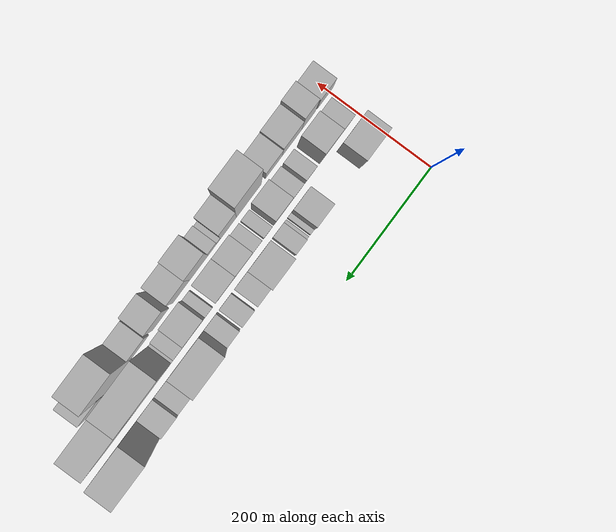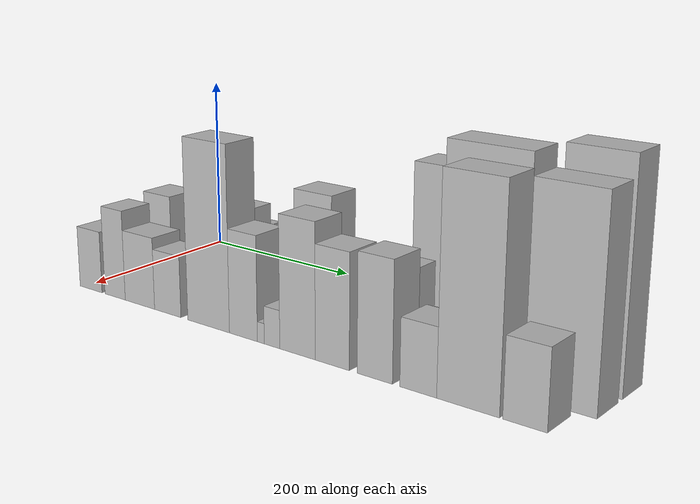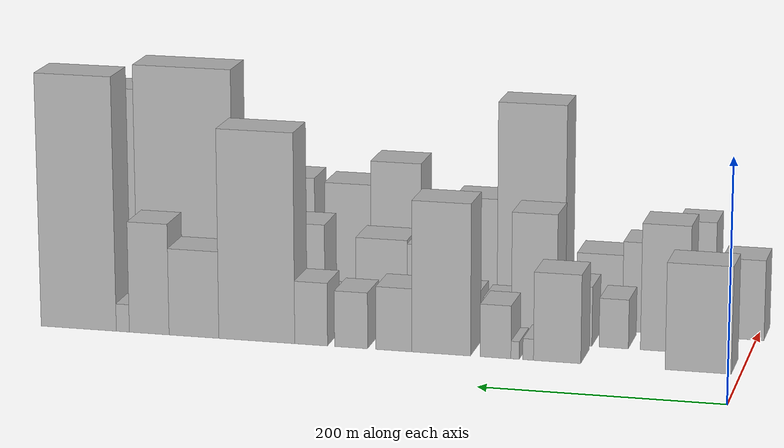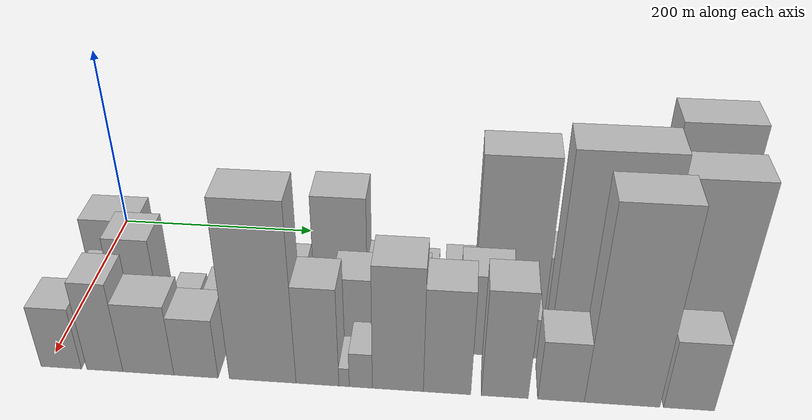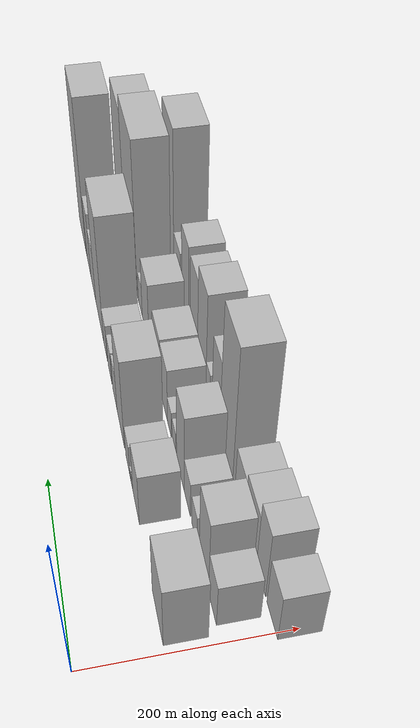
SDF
<sdf version="1.6">
 <world name="default">
  <model name="building_17">
   <static>1</static>
   <pose>100.0000 34.7056 0 0.000000 0.000000 0.000000</pose>
   <link name="link">
    <pose>0 0 45.00 0 0 0</pose>
    <collision name="collision"><geometry><box><size>40.0000 53.9557 90.0000</size></box></geometry></collision>
    <visual name="visual">
     <cast_shadows>0</cast_shadows>
     <geometry><box><size>40.0000 53.9557 90.0000</size></box></geometry>
     <material>
      <script>
       <uri>model://HANNAS_wall/materials/scripts</uri>
       <uri>model://HANNAS_wall/materials/textures</uri>
       <name>vrc/HANNAS_wall</name>
      </script>
     </material>
    </visual>
   </link>
  </model>
  <model name="building_18">
   <static>1</static>
   <pose>100.0000 150.6203 0 0.000000 0.000000 0.000000</pose>
   <link name="link">
    <pose>0 0 37.50 0 0 0</pose>
    <collision name="collision"><geometry><box><size>40.0000 39.2913 75.0000</size></box></geometry></collision>
    <visual name="visual">
     <cast_shadows>0</cast_shadows>
     <geometry><box><size>40.0000 39.2913 75.0000</size></box></geometry>
     <material>
      <script>
       <uri>model://HANNAS_wall/materials/scripts</uri>
       <uri>model://HANNAS_wall/materials/textures</uri>
       <name>vrc/HANNAS_wall</name>
      </script>
     </material>
    </visual>
   </link>
  </model>
  <model name="building_19">
   <static>1</static>
   <pose>100.0000 174.6894 0 0.000000 0.000000 0.000000</pose>
   <link name="link">
    <pose>0 0 9.00 0 0 0</pose>
    <collision name="collision"><geometry><box><size>40.0000 8.8470 18.0000</size></box></geometry></collision>
    <visual name="visual">
     <cast_shadows>0</cast_shadows>
     <geometry><box><size>40.0000 8.8470 18.0000</size></box></geometry>
     <material>
      <script>
       <uri>model://HANNAS_wall/materials/scripts</uri>
       <uri>model://HANNAS_wall/materials/textures</uri>
       <name>vrc/HANNAS_wall</name>
      </script>
     </material>
    </visual>
   </link>
  </model>
  <model name="building_20">
   <static>1</static>
   <pose>100.0000 185.5754 0 0.000000 0.000000 0.000000</pose>
   <link name="link">
    <pose>0 0 7.50 0 0 0</pose>
    <collision name="collision"><geometry><box><size>40.0000 6.9249 15.0000</size></box></geometry></collision>
    <visual name="visual">
     <cast_shadows>0</cast_shadows>
     <geometry><box><size>40.0000 6.9249 15.0000</size></box></geometry>
     <material>
      <script>
       <uri>model://HANNAS_wall/materials/scripts</uri>
       <uri>model://HANNAS_wall/materials/textures</uri>
       <name>vrc/HANNAS_wall</name>
      </script>
     </material>
    </visual>
   </link>
  </model>
  <model name="building_21">
   <static>1</static>
   <pose>100.0000 201.9347 0 0.000000 0.000000 0.000000</pose>
   <link name="link">
    <pose>0 0 22.50 0 0 0</pose>
    <collision name="collision"><geometry><box><size>40.0000 25.7938 45.0000</size></box></geometry></collision>
    <visual name="visual">
     <cast_shadows>0</cast_shadows>
     <geometry><box><size>40.0000 25.7938 45.0000</size></box></geometry>
     <material>
      <script>
       <uri>model://HANNAS_wall/materials/scripts</uri>
       <uri>model://HANNAS_wall/materials/textures</uri>
       <name>vrc/HANNAS_wall</name>
      </script>
     </material>
    </visual>
   </link>
  </model>
  <model name="building_22">
   <static>1</static>
   <pose>100.0000 247.6585 0 0.000000 0.000000 0.000000</pose>
   <link name="link">
    <pose>0 0 64.50 0 0 0</pose>
    <collision name="collision"><geometry><box><size>40.0000 49.6538 129.0000</size></box></geometry></collision>
    <visual name="visual">
     <cast_shadows>0</cast_shadows>
     <geometry><box><size>40.0000 49.6538 129.0000</size></box></geometry>
     <material>
      <script>
       <uri>model://HANNAS_wall/materials/scripts</uri>
       <uri>model://HANNAS_wall/materials/textures</uri>
       <name>vrc/HANNAS_wall</name>
      </script>
     </material>
    </visual>
   </link>
  </model>
  <model name="building_23">
   <static>1</static>
   <pose>100.0000 287.6734 0 0.000000 0.000000 0.000000</pose>
   <link name="link">
    <pose>0 0 27.00 0 0 0</pose>
    <collision name="collision"><geometry><box><size>40.0000 30.3761 54.0000</size></box></geometry></collision>
    <visual name="visual">
     <cast_shadows>0</cast_shadows>
     <geometry><box><size>40.0000 30.3761 54.0000</size></box></geometry>
     <material>
      <script>
       <uri>model://HANNAS_wall/materials/scripts</uri>
       <uri>model://HANNAS_wall/materials/textures</uri>
       <name>vrc/HANNAS_wall</name>
      </script>
     </material>
    </visual>
   </link>
  </model>
  <model name="building_24">
   <static>1</static>
   <pose>100.0000 323.9697 0 0.000000 0.000000 0.000000</pose>
   <link name="link">
    <pose>0 0 24.00 0 0 0</pose>
    <collision name="collision"><geometry><box><size>40.0000 28.2166 48.0000</size></box></geometry></collision>
    <visual name="visual">
     <cast_shadows>0</cast_shadows>
     <geometry><box><size>40.0000 28.2166 48.0000</size></box></geometry>
     <material>
      <script>
       <uri>model://HANNAS_wall/materials/scripts</uri>
       <uri>model://HANNAS_wall/materials/textures</uri>
       <name>vrc/HANNAS_wall</name>
      </script>
     </material>
    </visual>
   </link>
  </model>
  <model name="building_25">
   <static>1</static>
   <pose>100.0000 358.1570 0 0.000000 0.000000 0.000000</pose>
   <link name="link">
    <pose>0 0 27.00 0 0 0</pose>
    <collision name="collision"><geometry><box><size>40.0000 28.1580 54.0000</size></box></geometry></collision>
    <visual name="visual">
     <cast_shadows>0</cast_shadows>
     <geometry><box><size>40.0000 28.1580 54.0000</size></box></geometry>
     <material>
      <script>
       <uri>model://HANNAS_wall/materials/scripts</uri>
       <uri>model://HANNAS_wall/materials/textures</uri>
       <name>vrc/HANNAS_wall</name>
      </script>
     </material>
    </visual>
   </link>
  </model>
  <model name="building_26">
   <static>1</static>
   <pose>100.0000 405.0540 0 0.000000 0.000000 0.000000</pose>
   <link name="link">
    <pose>0 0 90.00 0 0 0</pose>
    <collision name="collision"><geometry><box><size>40.0000 65.6360 180.0000</size></box></geometry></collision>
    <visual name="visual">
     <cast_shadows>0</cast_shadows>
     <geometry><box><size>40.0000 65.6360 180.0000</size></box></geometry>
     <material>
      <script>
       <uri>model://HANNAS_wall/materials/scripts</uri>
       <uri>model://HANNAS_wall/materials/textures</uri>
       <name>vrc/HANNAS_wall</name>
      </script>
     </material>
    </visual>
   </link>
  </model>
  <model name="building_27">
   <static>1</static>
   <pose>100.0000 459.5757 0 0.000000 0.000000 0.000000</pose>
   <link name="link">
    <pose>0 0 37.50 0 0 0</pose>
    <collision name="collision"><geometry><box><size>40.0000 43.4074 75.0000</size></box></geometry></collision>
    <visual name="visual">
     <cast_shadows>0</cast_shadows>
     <geometry><box><size>40.0000 43.4074 75.0000</size></box></geometry>
     <material>
      <script>
       <uri>model://HANNAS_wall/materials/scripts</uri>
       <uri>model://HANNAS_wall/materials/textures</uri>
       <name>vrc/HANNAS_wall</name>
      </script>
     </material>
    </visual>
   </link>
  </model>
  <model name="building_28">
   <static>1</static>
   <pose>100.0000 498.7292 0 0.000000 0.000000 0.000000</pose>
   <link name="link">
    <pose>0 0 48.00 0 0 0</pose>
    <collision name="collision"><geometry><box><size>40.0000 34.8997 96.0000</size></box></geometry></collision>
    <visual name="visual">
     <cast_shadows>0</cast_shadows>
     <geometry><box><size>40.0000 34.8997 96.0000</size></box></geometry>
     <material>
      <script>
       <uri>model://HANNAS_wall/materials/scripts</uri>
       <uri>model://HANNAS_wall/materials/textures</uri>
       <name>vrc/HANNAS_wall</name>
      </script>
     </material>
    </visual>
   </link>
  </model>
  <model name="building_29">
   <static>1</static>
   <pose>100.0000 521.9105 0 0.000000 0.000000 0.000000</pose>
   <link name="link">
    <pose>0 0 12.00 0 0 0</pose>
    <collision name="collision"><geometry><box><size>40.0000 11.4629 24.0000</size></box></geometry></collision>
    <visual name="visual">
     <cast_shadows>0</cast_shadows>
     <geometry><box><size>40.0000 11.4629 24.0000</size></box></geometry>
     <material>
      <script>
       <uri>model://HANNAS_wall/materials/scripts</uri>
       <uri>model://HANNAS_wall/materials/textures</uri>
       <name>vrc/HANNAS_wall</name>
      </script>
     </material>
    </visual>
   </link>
  </model>
  <model name="building_30">
   <static>1</static>
   <pose>100.0000 560.9484 0 0.000000 0.000000 0.000000</pose>
   <link name="link">
    <pose>0 0 109.50 0 0 0</pose>
    <collision name="collision"><geometry><box><size>40.0000 66.6127 219.0000</size></box></geometry></collision>
    <visual name="visual">
     <cast_shadows>0</cast_shadows>
     <geometry><box><size>40.0000 66.6127 219.0000</size></box></geometry>
     <material>
      <script>
       <uri>model://HANNAS_wall/materials/scripts</uri>
       <uri>model://HANNAS_wall/materials/textures</uri>
       <name>vrc/HANNAS_wall</name>
      </script>
     </material>
    </visual>
   </link>
  </model>
  <model name="building_45">
   <static>1</static>
   <pose>149.0000 33.1688 0 0.000000 0.000000 0.000000</pose>
   <link name="link">
    <pose>0 0 31.50 0 0 0</pose>
    <collision name="collision"><geometry><box><size>40.0000 32.4219 63.0000</size></box></geometry></collision>
    <visual name="visual">
     <cast_shadows>0</cast_shadows>
     <geometry><box><size>40.0000 32.4219 63.0000</size></box></geometry>
     <material>
      <script>
       <uri>model://HANNAS_wall/materials/scripts</uri>
       <uri>model://HANNAS_wall/materials/textures</uri>
       <name>vrc/HANNAS_wall</name>
      </script>
     </material>
    </visual>
   </link>
  </model>
  <model name="building_46">
   <static>1</static>
   <pose>149.0000 69.6636 0 0.000000 0.000000 0.000000</pose>
   <link name="link">
    <pose>0 0 54.00 0 0 0</pose>
    <collision name="collision"><geometry><box><size>40.0000 40.5679 108.0000</size></box></geometry></collision>
    <visual name="visual">
     <cast_shadows>0</cast_shadows>
     <geometry><box><size>40.0000 40.5679 108.0000</size></box></geometry>
     <material>
      <script>
       <uri>model://HANNAS_wall/materials/scripts</uri>
       <uri>model://HANNAS_wall/materials/textures</uri>
       <name>vrc/HANNAS_wall</name>
      </script>
     </material>
    </visual>
   </link>
  </model>
  <model name="building_47">
   <static>1</static>
   <pose>149.0000 112.2504 0 0.000000 0.000000 0.000000</pose>
   <link name="link">
    <pose>0 0 21.00 0 0 0</pose>
    <collision name="collision"><geometry><box><size>40.0000 24.6057 42.0000</size></box></geometry></collision>
    <visual name="visual">
     <cast_shadows>0</cast_shadows>
     <geometry><box><size>40.0000 24.6057 42.0000</size></box></geometry>
     <material>
      <script>
       <uri>model://HANNAS_wall/materials/scripts</uri>
       <uri>model://HANNAS_wall/materials/textures</uri>
       <name>vrc/HANNAS_wall</name>
      </script>
     </material>
    </visual>
   </link>
  </model>
  <model name="building_48">
   <static>1</static>
   <pose>149.0000 145.4254 0 0.000000 0.000000 0.000000</pose>
   <link name="link">
    <pose>0 0 25.50 0 0 0</pose>
    <collision name="collision"><geometry><box><size>40.0000 29.7442 51.0000</size></box></geometry></collision>
    <visual name="visual">
     <cast_shadows>0</cast_shadows>
     <geometry><box><size>40.0000 29.7442 51.0000</size></box></geometry>
     <material>
      <script>
       <uri>model://HANNAS_wall/materials/scripts</uri>
       <uri>model://HANNAS_wall/materials/textures</uri>
       <name>vrc/HANNAS_wall</name>
      </script>
     </material>
    </visual>
   </link>
  </model>
  <model name="building_49">
   <static>1</static>
   <pose>149.0000 179.5197 0 0.000000 0.000000 0.000000</pose>
   <link name="link">
    <pose>0 0 55.50 0 0 0</pose>
    <collision name="collision"><geometry><box><size>40.0000 38.4443 111.0000</size></box></geometry></collision>
    <visual name="visual">
     <cast_shadows>0</cast_shadows>
     <geometry><box><size>40.0000 38.4443 111.0000</size></box></geometry>
     <material>
      <script>
       <uri>model://HANNAS_wall/materials/scripts</uri>
       <uri>model://HANNAS_wall/materials/textures</uri>
       <name>vrc/HANNAS_wall</name>
      </script>
     </material>
    </visual>
   </link>
  </model>
  <model name="building_50">
   <static>1</static>
   <pose>149.0000 212.6584 0 0.000000 0.000000 0.000000</pose>
   <link name="link">
    <pose>0 0 18.00 0 0 0</pose>
    <collision name="collision"><geometry><box><size>40.0000 19.8331 36.0000</size></box></geometry></collision>
    <visual name="visual">
     <cast_shadows>0</cast_shadows>
     <geometry><box><size>40.0000 19.8331 36.0000</size></box></geometry>
     <material>
      <script>
       <uri>model://HANNAS_wall/materials/scripts</uri>
       <uri>model://HANNAS_wall/materials/textures</uri>
       <name>vrc/HANNAS_wall</name>
      </script>
     </material>
    </visual>
   </link>
  </model>
  <model name="building_51">
   <static>1</static>
   <pose>149.0000 237.3529 0 0.000000 0.000000 0.000000</pose>
   <link name="link">
    <pose>0 0 19.50 0 0 0</pose>
    <collision name="collision"><geometry><box><size>40.0000 21.5558 39.0000</size></box></geometry></collision>
    <visual name="visual">
     <cast_shadows>0</cast_shadows>
     <geometry><box><size>40.0000 21.5558 39.0000</size></box></geometry>
     <material>
      <script>
       <uri>model://HANNAS_wall/materials/scripts</uri>
       <uri>model://HANNAS_wall/materials/textures</uri>
       <name>vrc/HANNAS_wall</name>
      </script>
     </material>
    </visual>
   </link>
  </model>
  <model name="building_52">
   <static>1</static>
   <pose>149.0000 268.0263 0 0.000000 0.000000 0.000000</pose>
   <link name="link">
    <pose>0 0 39.00 0 0 0</pose>
    <collision name="collision"><geometry><box><size>40.0000 39.7911 78.0000</size></box></geometry></collision>
    <visual name="visual">
     <cast_shadows>0</cast_shadows>
     <geometry><box><size>40.0000 39.7911 78.0000</size></box></geometry>
     <material>
      <script>
       <uri>model://HANNAS_wall/materials/scripts</uri>
       <uri>model://HANNAS_wall/materials/textures</uri>
       <name>vrc/HANNAS_wall</name>
      </script>
     </material>
    </visual>
   </link>
  </model>
  <model name="building_53">
   <static>1</static>
   <pose>149.0000 309.9628 0 0.000000 0.000000 0.000000</pose>
   <link name="link">
    <pose>0 0 40.50 0 0 0</pose>
    <collision name="collision"><geometry><box><size>40.0000 44.0819 81.0000</size></box></geometry></collision>
    <visual name="visual">
     <cast_shadows>0</cast_shadows>
     <geometry><box><size>40.0000 44.0819 81.0000</size></box></geometry>
     <material>
      <script>
       <uri>model://HANNAS_wall/materials/scripts</uri>
       <uri>model://HANNAS_wall/materials/textures</uri>
       <name>vrc/HANNAS_wall</name>
      </script>
     </material>
    </visual>
   </link>
  </model>
  <model name="building_54">
   <static>1</static>
   <pose>149.0000 350.5146 0 0.000000 0.000000 0.000000</pose>
   <link name="link">
    <pose>0 0 15.00 0 0 0</pose>
    <collision name="collision"><geometry><box><size>40.0000 17.0216 30.0000</size></box></geometry></collision>
    <visual name="visual">
     <cast_shadows>0</cast_shadows>
     <geometry><box><size>40.0000 17.0216 30.0000</size></box></geometry>
     <material>
      <script>
       <uri>model://HANNAS_wall/materials/scripts</uri>
       <uri>model://HANNAS_wall/materials/textures</uri>
       <name>vrc/HANNAS_wall</name>
      </script>
     </material>
    </visual>
   </link>
  </model>
  <model name="building_55">
   <static>1</static>
   <pose>149.0000 381.6897 0 0.000000 0.000000 0.000000</pose>
   <link name="link">
    <pose>0 0 45.00 0 0 0</pose>
    <collision name="collision"><geometry><box><size>40.0000 45.3287 90.0000</size></box></geometry></collision>
    <visual name="visual">
     <cast_shadows>0</cast_shadows>
     <geometry><box><size>40.0000 45.3287 90.0000</size></box></geometry>
     <material>
      <script>
       <uri>model://HANNAS_wall/materials/scripts</uri>
       <uri>model://HANNAS_wall/materials/textures</uri>
       <name>vrc/HANNAS_wall</name>
      </script>
     </material>
    </visual>
   </link>
  </model>
  <model name="building_56">
   <static>1</static>
   <pose>149.0000 417.6556 0 0.000000 0.000000 0.000000</pose>
   <link name="link">
    <pose>0 0 22.50 0 0 0</pose>
    <collision name="collision"><geometry><box><size>40.0000 26.6030 45.0000</size></box></geometry></collision>
    <visual name="visual">
     <cast_shadows>0</cast_shadows>
     <geometry><box><size>40.0000 26.6030 45.0000</size></box></geometry>
     <material>
      <script>
       <uri>model://HANNAS_wall/materials/scripts</uri>
       <uri>model://HANNAS_wall/materials/textures</uri>
       <name>vrc/HANNAS_wall</name>
      </script>
     </material>
    </visual>
   </link>
  </model>
  <model name="building_57">
   <static>1</static>
   <pose>149.0000 434.9982 0 0.000000 0.000000 0.000000</pose>
   <link name="link">
    <pose>0 0 9.00 0 0 0</pose>
    <collision name="collision"><geometry><box><size>40.0000 8.0822 18.0000</size></box></geometry></collision>
    <visual name="visual">
     <cast_shadows>0</cast_shadows>
     <geometry><box><size>40.0000 8.0822 18.0000</size></box></geometry>
     <material>
      <script>
       <uri>model://HANNAS_wall/materials/scripts</uri>
       <uri>model://HANNAS_wall/materials/textures</uri>
       <name>vrc/HANNAS_wall</name>
      </script>
     </material>
    </visual>
   </link>
  </model>
  <model name="building_58">
   <static>1</static>
   <pose>149.0000 481.8063 0 0.000000 0.000000 0.000000</pose>
   <link name="link">
    <pose>0 0 109.50 0 0 0</pose>
    <collision name="collision"><geometry><box><size>40.0000 85.5340 219.0000</size></box></geometry></collision>
    <visual name="visual">
     <cast_shadows>0</cast_shadows>
     <geometry><box><size>40.0000 85.5340 219.0000</size></box></geometry>
     <material>
      <script>
       <uri>model://HANNAS_wall/materials/scripts</uri>
       <uri>model://HANNAS_wall/materials/textures</uri>
       <name>vrc/HANNAS_wall</name>
      </script>
     </material>
    </visual>
   </link>
  </model>
  <model name="building_59">
   <static>1</static>
   <pose>149.0000 559.4920 0 0.000000 0.000000 0.000000</pose>
   <link name="link">
    <pose>0 0 99.00 0 0 0</pose>
    <collision name="collision"><geometry><box><size>40.0000 69.8373 198.0000</size></box></geometry></collision>
    <visual name="visual">
     <cast_shadows>0</cast_shadows>
     <geometry><box><size>40.0000 69.8373 198.0000</size></box></geometry>
     <material>
      <script>
       <uri>model://HANNAS_wall/materials/scripts</uri>
       <uri>model://HANNAS_wall/materials/textures</uri>
       <name>vrc/HANNAS_wall</name>
      </script>
     </material>
    </visual>
   </link>
  </model>
  <model name="building_72">
   <static>1</static>
   <pose>198.0000 12.0300 0 0.000000 0.000000 0.000000</pose>
   <link name="link">
    <pose>0 0 34.50 0 0 0</pose>
    <collision name="collision"><geometry><box><size>40.0000 36.5291 69.0000</size></box></geometry></collision>
    <visual name="visual">
     <cast_shadows>0</cast_shadows>
     <geometry><box><size>40.0000 36.5291 69.0000</size></box></geometry>
     <material>
      <script>
       <uri>model://HANNAS_wall/materials/scripts</uri>
       <uri>model://HANNAS_wall/materials/textures</uri>
       <name>vrc/HANNAS_wall</name>
      </script>
     </material>
    </visual>
   </link>
  </model>
  <model name="building_73">
   <static>1</static>
   <pose>198.0000 51.5324 0 0.000000 0.000000 0.000000</pose>
   <link name="link">
    <pose>0 0 49.50 0 0 0</pose>
    <collision name="collision"><geometry><box><size>40.0000 32.4758 99.0000</size></box></geometry></collision>
    <visual name="visual">
     <cast_shadows>0</cast_shadows>
     <geometry><box><size>40.0000 32.4758 99.0000</size></box></geometry>
     <material>
      <script>
       <uri>model://HANNAS_wall/materials/scripts</uri>
       <uri>model://HANNAS_wall/materials/textures</uri>
       <name>vrc/HANNAS_wall</name>
      </script>
     </material>
    </visual>
   </link>
  </model>
  <model name="building_74">
   <static>1</static>
   <pose>198.0000 90.5555 0 0.000000 0.000000 0.000000</pose>
   <link name="link">
    <pose>0 0 39.00 0 0 0</pose>
    <collision name="collision"><geometry><box><size>40.0000 45.5702 78.0000</size></box></geometry></collision>
    <visual name="visual">
     <cast_shadows>0</cast_shadows>
     <geometry><box><size>40.0000 45.5702 78.0000</size></box></geometry>
     <material>
      <script>
       <uri>model://HANNAS_wall/materials/scripts</uri>
       <uri>model://HANNAS_wall/materials/textures</uri>
       <name>vrc/HANNAS_wall</name>
      </script>
     </material>
    </visual>
   </link>
  </model>
  <model name="building_75">
   <static>1</static>
   <pose>198.0000 132.9082 0 0.000000 0.000000 0.000000</pose>
   <link name="link">
    <pose>0 0 33.00 0 0 0</pose>
    <collision name="collision"><geometry><box><size>40.0000 39.1352 66.0000</size></box></geometry></collision>
    <visual name="visual">
     <cast_shadows>0</cast_shadows>
     <geometry><box><size>40.0000 39.1352 66.0000</size></box></geometry>
     <material>
      <script>
       <uri>model://HANNAS_wall/materials/scripts</uri>
       <uri>model://HANNAS_wall/materials/textures</uri>
       <name>vrc/HANNAS_wall</name>
      </script>
     </material>
    </visual>
   </link>
  </model>
  <model name="building_76">
   <static>1</static>
   <pose>198.0000 191.7233 0 0.000000 0.000000 0.000000</pose>
   <link name="link">
    <pose>0 0 96.00 0 0 0</pose>
    <collision name="collision"><geometry><box><size>40.0000 58.4951 192.0000</size></box></geometry></collision>
    <visual name="visual">
     <cast_shadows>0</cast_shadows>
     <geometry><box><size>40.0000 58.4951 192.0000</size></box></geometry>
     <material>
      <script>
       <uri>model://HANNAS_wall/materials/scripts</uri>
       <uri>model://HANNAS_wall/materials/textures</uri>
       <name>vrc/HANNAS_wall</name>
      </script>
     </material>
    </visual>
   </link>
  </model>
  <model name="building_77">
   <static>1</static>
   <pose>198.0000 239.6193 0 0.000000 0.000000 0.000000</pose>
   <link name="link">
    <pose>0 0 54.00 0 0 0</pose>
    <collision name="collision"><geometry><box><size>40.0000 37.2970 108.0000</size></box></geometry></collision>
    <visual name="visual">
     <cast_shadows>0</cast_shadows>
     <geometry><box><size>40.0000 37.2970 108.0000</size></box></geometry>
     <material>
      <script>
       <uri>model://HANNAS_wall/materials/scripts</uri>
       <uri>model://HANNAS_wall/materials/textures</uri>
       <name>vrc/HANNAS_wall</name>
      </script>
     </material>
    </visual>
   </link>
  </model>
  <model name="building_78">
   <static>1</static>
   <pose>198.0000 262.7277 0 0.000000 0.000000 0.000000</pose>
   <link name="link">
    <pose>0 0 10.50 0 0 0</pose>
    <collision name="collision"><geometry><box><size>40.0000 8.9198 21.0000</size></box></geometry></collision>
    <visual name="visual">
     <cast_shadows>0</cast_shadows>
     <geometry><box><size>40.0000 8.9198 21.0000</size></box></geometry>
     <material>
      <script>
       <uri>model://HANNAS_wall/materials/scripts</uri>
       <uri>model://HANNAS_wall/materials/textures</uri>
       <name>vrc/HANNAS_wall</name>
      </script>
     </material>
    </visual>
   </link>
  </model>
  <model name="building_79">
   <static>1</static>
   <pose>198.0000 277.1560 0 0.000000 0.000000 0.000000</pose>
   <link name="link">
    <pose>0 0 19.50 0 0 0</pose>
    <collision name="collision"><geometry><box><size>40.0000 19.9367 39.0000</size></box></geometry></collision>
    <visual name="visual">
     <cast_shadows>0</cast_shadows>
     <geometry><box><size>40.0000 19.9367 39.0000</size></box></geometry>
     <material>
      <script>
       <uri>model://HANNAS_wall/materials/scripts</uri>
       <uri>model://HANNAS_wall/materials/textures</uri>
       <name>vrc/HANNAS_wall</name>
      </script>
     </material>
    </visual>
   </link>
  </model>
  <model name="building_80">
   <static>1</static>
   <pose>198.0000 309.0452 0 0.000000 0.000000 0.000000</pose>
   <link name="link">
    <pose>0 0 67.50 0 0 0</pose>
    <collision name="collision"><geometry><box><size>40.0000 43.8416 135.0000</size></box></geometry></collision>
    <visual name="visual">
     <cast_shadows>0</cast_shadows>
     <geometry><box><size>40.0000 43.8416 135.0000</size></box></geometry>
     <material>
      <script>
       <uri>model://HANNAS_wall/materials/scripts</uri>
       <uri>model://HANNAS_wall/materials/textures</uri>
       <name>vrc/HANNAS_wall</name>
      </script>
     </material>
    </visual>
   </link>
  </model>
  <model name="building_81">
   <static>1</static>
   <pose>198.0000 351.1544 0 0.000000 0.000000 0.000000</pose>
   <link name="link">
    <pose>0 0 57.00 0 0 0</pose>
    <collision name="collision"><geometry><box><size>40.0000 40.3768 114.0000</size></box></geometry></collision>
    <visual name="visual">
     <cast_shadows>0</cast_shadows>
     <geometry><box><size>40.0000 40.3768 114.0000</size></box></geometry>
     <material>
      <script>
       <uri>model://HANNAS_wall/materials/scripts</uri>
       <uri>model://HANNAS_wall/materials/textures</uri>
       <name>vrc/HANNAS_wall</name>
      </script>
     </material>
    </visual>
   </link>
  </model>
  <model name="building_82">
   <static>1</static>
   <pose>198.0000 400.1579 0 0.000000 0.000000 0.000000</pose>
   <link name="link">
    <pose>0 0 58.50 0 0 0</pose>
    <collision name="collision"><geometry><box><size>40.0000 39.6303 117.0000</size></box></geometry></collision>
    <visual name="visual">
     <cast_shadows>0</cast_shadows>
     <geometry><box><size>40.0000 39.6303 117.0000</size></box></geometry>
     <material>
      <script>
       <uri>model://HANNAS_wall/materials/scripts</uri>
       <uri>model://HANNAS_wall/materials/textures</uri>
       <name>vrc/HANNAS_wall</name>
      </script>
     </material>
    </visual>
   </link>
  </model>
  <model name="building_83">
   <static>1</static>
   <pose>198.0000 447.4905 0 0.000000 0.000000 0.000000</pose>
   <link name="link">
    <pose>0 0 33.00 0 0 0</pose>
    <collision name="collision"><geometry><box><size>40.0000 39.0348 66.0000</size></box></geometry></collision>
    <visual name="visual">
     <cast_shadows>0</cast_shadows>
     <geometry><box><size>40.0000 39.0348 66.0000</size></box></geometry>
     <material>
      <script>
       <uri>model://HANNAS_wall/materials/scripts</uri>
       <uri>model://HANNAS_wall/materials/textures</uri>
       <name>vrc/HANNAS_wall</name>
      </script>
     </material>
    </visual>
   </link>
  </model>
  <model name="building_84">
   <static>1</static>
   <pose>198.0000 498.4020 0 0.000000 0.000000 0.000000</pose>
   <link name="link">
    <pose>0 0 103.50 0 0 0</pose>
    <collision name="collision"><geometry><box><size>40.0000 62.7882 207.0000</size></box></geometry></collision>
    <visual name="visual">
     <cast_shadows>0</cast_shadows>
     <geometry><box><size>40.0000 62.7882 207.0000</size></box></geometry>
     <material>
      <script>
       <uri>model://HANNAS_wall/materials/scripts</uri>
       <uri>model://HANNAS_wall/materials/textures</uri>
       <name>vrc/HANNAS_wall</name>
      </script>
     </material>
    </visual>
   </link>
  </model>
  <model name="building_85">
   <static>1</static>
   <pose>198.0000 553.7124 0 0.000000 0.000000 0.000000</pose>
   <link name="link">
    <pose>0 0 37.50 0 0 0</pose>
    <collision name="collision"><geometry><box><size>40.0000 41.8326 75.0000</size></box></geometry></collision>
    <visual name="visual">
     <cast_shadows>0</cast_shadows>
     <geometry><box><size>40.0000 41.8326 75.0000</size></box></geometry>
     <material>
      <script>
       <uri>model://HANNAS_wall/materials/scripts</uri>
       <uri>model://HANNAS_wall/materials/textures</uri>
       <name>vrc/HANNAS_wall</name>
      </script>
     </material>
    </visual>
   </link>
  </model>
 </world>
</sdf>
